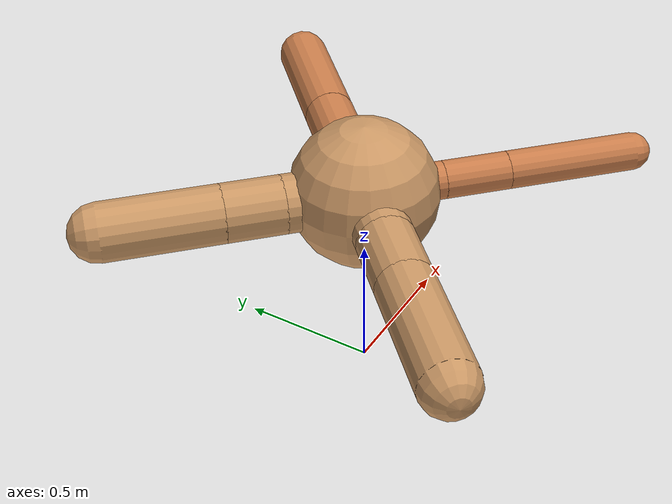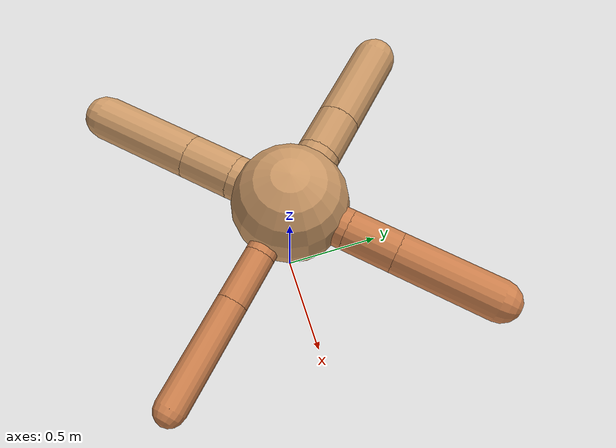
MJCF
<?xml version="1.0" ?>
<mujoco model="ant">

	<compiler angle="degree" coordinate="local" inertiafromgeom="true"/>

	<option integrator="RK4" timestep="0.01"/>

	<custom>

		<numeric data="0.0 0.0 0.55 1.0 0.0 0.0 0.0 0.0 1.0 0.0 -1.0 0.0 -1.0 0.0 1.0" name="init_qpos"/>

	</custom>

	<default>

		<joint armature="1" damping="1" limited="true"/>

		<geom conaffinity="0" condim="3" density="5.0" friction="1.5 0.1 0.1" margin="0.01" rgba="0.8 0.6 0.4 1"/>

	</default>

	<worldbody>

		<body name="torso" pos="0 0 0.75">

			<geom name="torso_geom" pos="0 0 0" size="0.26455032973805687" type="sphere"/>

			<!--joint armature="0" damping="0" limited="false" margin="0.01" name="root" pos="0 0 0" type="free"/-->

			<body name="front_left_leg" pos="0 0 0">

				<geom fromto="0 0 0 0.2 0.2 0" name="aux_1_geom" size="0.09230938941239643" type="capsule" rgba=".8 .5 .3 1"/>

				<body name="aux_1" pos="0.2 0.2 0">

					<joint axis="0 0 1" name="hip_1" pos="0.0 0.0 0.0" range="-40 40" type="hinge"/>

					<geom fromto="0 0 0 0.1619768620433918 0.1619768620433918 0" name="left_leg_geom" size="0.09230938941239643" type="capsule" rgba=".8 .5 .3 1"/>

					<body pos="0.1619768620433918 0.1619768620433918 0" name="front_left_foot">

						<joint axis="-1 1 0" name="ankle_1" pos="0.0 0.0 0.0" range="30 100" type="hinge"/>

						<geom fromto="0 0 0 0.3239537240867836 0.3239537240867836 0" name="left_ankle_geom" size="0.09230938941239643" type="capsule" rgba=".8 .5 .3 1"/>

					</body>

				</body>

			</body>

			<body name="front_right_leg" pos="0 0 0">

				<geom fromto="0 0 0 -0.2 0.2 0" name="aux_2_geom" size="0.10389912141004402" type="capsule"/>

				<body name="aux_2" pos="-0.2 0.2 0">

					<joint axis="0 0 1" name="hip_2" pos="0.0 0.0 0.0" range="-40 40" type="hinge"/>

					<geom fromto="0 0 0 -0.14710371479925907 0.14710371479925907 0" name="right_leg_geom" size="0.10389912141004402" type="capsule"/>

					<body pos="-0.14710371479925907 0.14710371479925907 0" name="front_right_foot">

						<joint axis="1 1 0" name="ankle_2" pos="0.0 0.0 0.0" range="-100 -30" type="hinge"/>

						<geom fromto="0 0 0 -0.29420742959851814 0.29420742959851814 0" name="right_ankle_geom" size="0.10389912141004402" type="capsule"/>

					</body>

				</body>

			</body>

			<body name="left_back_leg" pos="0 0 0">

				<geom fromto="0 0 0 -0.2 -0.2 0" name="aux_3_geom" size="0.10295757431168615" type="capsule"/>

				<body name="aux_3" pos="-0.2 -0.2 0">

					<joint axis="0 0 1" name="hip_3" pos="0.0 0.0 0.0" range="-40 40" type="hinge"/>

					<geom fromto="0 0 0 -0.16377385563330107 -0.16377385563330107 0" name="back_leg_geom" size="0.10295757431168615" type="capsule"/>

					<body pos="-0.16377385563330107 -0.16377385563330107 0" name="left_back_foot">

						<joint axis="-1 1 0" name="ankle_3" pos="0.0 0.0 0.0" range="-100 -30" type="hinge"/>

						<geom fromto="0 0 0 -0.32754771126660215 -0.32754771126660215 0" name="third_ankle_geom" size="0.10295757431168615" type="capsule"/>

					</body>

				</body>

			</body>

			<body name="right_back_leg" pos="0 0 0">

				<geom fromto="0 0 0 0.2 -0.2 0" name="aux_4_geom" size="0.06809887137525177" type="capsule" rgba=".8 .5 .3 1"/>

				<body name="aux_4" pos="0.2 -0.2 0">

					<joint axis="0 0 1" name="hip_4" pos="0.0 0.0 0.0" range="-40 40" type="hinge"/>

					<geom fromto="0 0 0 0.16596841579436525 -0.16596841579436525 0" name="rightback_leg_geom" size="0.06809887137525177" type="capsule" rgba=".8 .5 .3 1"/>

					<body pos="0.16596841579436525 -0.16596841579436525 0" name="right_back_foot">

						<joint axis="1 1 0" name="ankle_4" pos="0.0 0.0 0.0" range="30 100" type="hinge"/>

						<geom fromto="0 0 0 0.3319368315887305 -0.3319368315887305 0" name="fourth_ankle_geom" size="0.06809887137525177" type="capsule" rgba=".8 .5 .3 1"/>

					</body>

				</body>

			</body>

		</body>

	</worldbody>

	<actuator>

		<motor ctrllimited="true" ctrlrange="-1.0 1.0" joint="hip_4" gear="150"/>

		<motor ctrllimited="true" ctrlrange="-1.0 1.0" joint="ankle_4" gear="150"/>

		<motor ctrllimited="true" ctrlrange="-1.0 1.0" joint="hip_1" gear="150"/>

		<motor ctrllimited="true" ctrlrange="-1.0 1.0" joint="ankle_1" gear="150"/>

		<motor ctrllimited="true" ctrlrange="-1.0 1.0" joint="hip_2" gear="150"/>

		<motor ctrllimited="true" ctrlrange="-1.0 1.0" joint="ankle_2" gear="150"/>

		<motor ctrllimited="true" ctrlrange="-1.0 1.0" joint="hip_3" gear="150"/>

		<motor ctrllimited="true" ctrlrange="-1.0 1.0" joint="ankle_3" gear="150"/>

	</actuator>

</mujoco>
